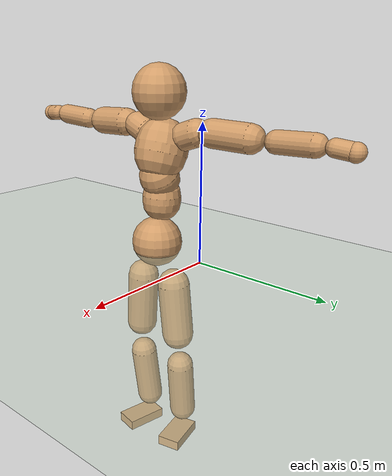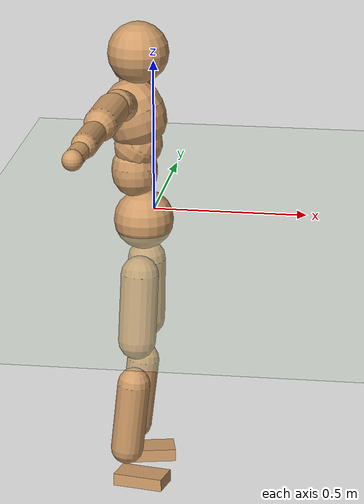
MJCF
<mujoco model="humanoid">
  <compiler coordinate="local"/>
  <default>
    <joint damping="0.0" armature="0.01" stiffness="0.0" limited="true"/>
    <geom conaffinity="1" condim="3" contype="7" margin="0.001" rgba="0.8 0.6 .4 1"/>
  </default>
  <asset>
    <texture type="skybox" builtin="gradient" rgb1=".4 .5 .6" rgb2="0 0 0" width="100" height="100"/>
    <texture builtin="flat" height="1278" mark="cross" markrgb="1 1 1" name="texgeom" random="0.01" rgb1="0.8 0.6 0.4" rgb2="0.8 0.6 0.4" type="cube" width="127"/>
    <texture builtin="checker" height="100" name="texplane" rgb1="0 0 0" rgb2="0.8 0.8 0.8" type="2d" width="100"/>
    <material name="MatPlane" reflectance="0.5" shininess="1" specular="1" texrepeat="60 60" texture="texplane"/>
    <material name="geom" texture="texgeom" texuniform="true"/>
  </asset>
  <worldbody>
    <light cutoff="100" diffuse="1 1 1" dir="-0 0 -1.3" directional="true" exponent="1" pos="0 0 1.3" specular=".1 .1 .1"/>
    <geom conaffinity="1" condim="3" name="floor" pos="0 0 0" rgba="0.8 0.9 0.8 1" size="100 100 .2" type="plane" material="MatPlane"/>
    <body name="Pelvis" pos="0.0003 -0.2109 0.0358">
      <freejoint name="Pelvis"/>
      <geom type="sphere" contype="1" conaffinity="1" density="500" size="0.0958" pos="0.0000 0.0000 0.0000" name="Pelvis"/>
      <body name="L_Hip" pos="-0.0027 0.0742 -0.0893">
        <joint name="L_Hip_x" type="hinge" pos="0 0 0" axis="1 0 0" stiffness="800" damping="80" armature="0.02" range="-180.0000 180.0000"/>
        <joint name="L_Hip_y" type="hinge" pos="0 0 0" axis="0 1 0" stiffness="800" damping="80" armature="0.02" range="-180.0000 180.0000"/>
        <joint name="L_Hip_z" type="hinge" pos="0 0 0" axis="0 0 1" stiffness="800" damping="80" armature="0.02" range="-180.0000 180.0000"/>
        <geom type="capsule" contype="1" conaffinity="1" density="500" fromto="-0.0022 0.0057 -0.0712 -0.0087 0.0227 -0.2848" size="0.0612" name="L_Hip"/>
        <body name="L_Knee" pos="-0.0109 0.0284 -0.3561">
          <joint name="L_Knee_x" type="hinge" pos="0 0 0" axis="1 0 0" stiffness="800" damping="80" armature="0.02" range="-180.0000 180.0000"/>
          <joint name="L_Knee_y" type="hinge" pos="0 0 0" axis="0 1 0" stiffness="800" damping="80" armature="0.02" range="-180.0000 180.0000"/>
          <joint name="L_Knee_z" type="hinge" pos="0 0 0" axis="0 0 1" stiffness="800" damping="80" armature="0.02" range="-180.0000 180.0000"/>
          <geom type="capsule" contype="1" conaffinity="1" density="500" fromto="-0.0088 -0.0023 -0.0756 -0.0350 -0.0090 -0.3024" size="0.0525" name="L_Knee"/>
          <body name="L_Ankle" pos="-0.0438 -0.0113 -0.378">
            <joint name="L_Ankle_x" type="hinge" pos="0 0 0" axis="1 0 0" stiffness="800" damping="80" armature="0.02" range="-180.0000 180.0000"/>
            <joint name="L_Ankle_y" type="hinge" pos="0 0 0" axis="0 1 0" stiffness="800" damping="80" armature="0.02" range="-180.0000 180.0000"/>
            <joint name="L_Ankle_z" type="hinge" pos="0 0 0" axis="0 0 1" stiffness="800" damping="80" armature="0.02" range="-180.0000 180.0000"/>
            <geom type="box" contype="1" conaffinity="1" density="500" pos="0.0563 0.0127 -0.0273" size="0.0801 0.0462 0.0201" quat="0.9939 0.0000 0.0000 0.1106" name="L_Ankle"/>
            <body name="L_Toe" pos="0.1125 0.0254 -0.0546">
              <joint name="L_Toe_x" type="hinge" pos="0 0 0" axis="1 0 0" stiffness="500" damping="50" armature="0.02" range="-180.0000 180.0000"/>
              <joint name="L_Toe_y" type="hinge" pos="0 0 0" axis="0 1 0" stiffness="500" damping="50" armature="0.02" range="-180.0000 180.0000"/>
              <joint name="L_Toe_z" type="hinge" pos="0 0 0" axis="0 0 1" stiffness="500" damping="50" armature="0.02" range="-180.0000 180.0000"/>
              <geom type="box" contype="1" conaffinity="1" density="500" pos="0.0000 0.0000 0.0269" size="0.001 0.0023 0.001" quat="0.9931 0.0000 0.0000 0.1170" name="L_Toe"/>
            </body>
          </body>
        </body>
      </body>
      <body name="R_Hip" pos="0.0005 -0.072 -0.0892">
        <joint name="R_Hip_x" type="hinge" pos="0 0 0" axis="1 0 0" stiffness="800" damping="80" armature="0.02" range="-180.0000 180.0000"/>
        <joint name="R_Hip_y" type="hinge" pos="0 0 0" axis="0 1 0" stiffness="800" damping="80" armature="0.02" range="-180.0000 180.0000"/>
        <joint name="R_Hip_z" type="hinge" pos="0 0 0" axis="0 0 1" stiffness="800" damping="80" armature="0.02" range="-180.0000 180.0000"/>
        <geom type="capsule" contype="1" conaffinity="1" density="500" fromto="-0.0024 -0.0069 -0.0725 -0.0097 -0.0276 -0.2901" size="0.0605" name="R_Hip"/>
        <body name="R_Knee" pos="-0.0121 -0.0344 -0.3626">
          <joint name="R_Knee_x" type="hinge" pos="0 0 0" axis="1 0 0" stiffness="800" damping="80" armature="0.02" range="-180.0000 180.0000"/>
          <joint name="R_Knee_y" type="hinge" pos="0 0 0" axis="0 1 0" stiffness="800" damping="80" armature="0.02" range="-180.0000 180.0000"/>
          <joint name="R_Knee_z" type="hinge" pos="0 0 0" axis="0 0 1" stiffness="800" damping="80" armature="0.02" range="-180.0000 180.0000"/>
          <geom type="capsule" contype="1" conaffinity="1" density="500" fromto="-0.0085 0.0027 -0.0761 -0.0339 0.0109 -0.3043" size="0.0528" name="R_Knee"/>
          <body name="R_Ankle" pos="-0.0424 0.0136 -0.3804">
            <joint name="R_Ankle_x" type="hinge" pos="0 0 0" axis="1 0 0" stiffness="800" damping="80" armature="0.02" range="-180.0000 180.0000"/>
            <joint name="R_Ankle_y" type="hinge" pos="0 0 0" axis="0 1 0" stiffness="800" damping="80" armature="0.02" range="-180.0000 180.0000"/>
            <joint name="R_Ankle_z" type="hinge" pos="0 0 0" axis="0 0 1" stiffness="800" damping="80" armature="0.02" range="-180.0000 180.0000"/>
            <geom type="box" contype="1" conaffinity="1" density="500" pos="0.0582 -0.0114 -0.0234" size="0.0818 0.0456 0.0201" quat="0.9953 0.0000 0.0000 -0.0966" name="R_Ankle"/>
            <body name="R_Toe" pos="0.1163 -0.0228 -0.0469">
              <joint name="R_Toe_x" type="hinge" pos="0 0 0" axis="1 0 0" stiffness="500" damping="50" armature="0.02" range="-180.0000 180.0000"/>
              <joint name="R_Toe_y" type="hinge" pos="0 0 0" axis="0 1 0" stiffness="500" damping="50" armature="0.02" range="-180.0000 180.0000"/>
              <joint name="R_Toe_z" type="hinge" pos="0 0 0" axis="0 0 1" stiffness="500" damping="50" armature="0.02" range="-180.0000 180.0000"/>
              <geom type="box" contype="1" conaffinity="1" density="500" pos="0.0000 0.0000 0.0245" size="0.0009 0.0023 0.0011" quat="0.9962 0.0000 0.0000 -0.0869" name="R_Toe"/>
            </body>
          </body>
        </body>
      </body>
      <body name="Torso" pos="-0.0268 -0.0015 0.1032">
        <joint name="Torso_x" type="hinge" pos="0 0 0" axis="1 0 0" stiffness="1000" damping="100" armature="0.02" range="-180.0000 180.0000"/>
        <joint name="Torso_y" type="hinge" pos="0 0 0" axis="0 1 0" stiffness="1000" damping="100" armature="0.02" range="-180.0000 180.0000"/>
        <joint name="Torso_z" type="hinge" pos="0 0 0" axis="0 0 1" stiffness="1000" damping="100" armature="0.02" range="-180.0000 180.0000"/>
        <geom type="capsule" contype="1" conaffinity="1" density="500" fromto="-0.0016 0.0015 0.0712 -0.0010 0.0010 0.0474" size="0.073" name="Torso"/>
        <body name="Spine" pos="-0.0026 0.0024 0.1186">
          <joint name="Spine_x" type="hinge" pos="0 0 0" axis="1 0 0" stiffness="1000" damping="100" armature="0.02" range="-180.0000 180.0000"/>
          <joint name="Spine_y" type="hinge" pos="0 0 0" axis="0 1 0" stiffness="1000" damping="100" armature="0.02" range="-180.0000 180.0000"/>
          <joint name="Spine_z" type="hinge" pos="0 0 0" axis="0 0 1" stiffness="1000" damping="100" armature="0.02" range="-180.0000 180.0000"/>
          <geom type="capsule" contype="1" conaffinity="1" density="500" fromto="0.0165 0.0009 0.0290 0.0110 0.0006 0.0194" size="0.0747" name="Spine"/>
          <body name="Chest" pos="0.0275 0.0014 0.0484">
            <joint name="Chest_x" type="hinge" pos="0 0 0" axis="1 0 0" stiffness="1000" damping="100" armature="0.02" range="-180.0000 180.0000"/>
            <joint name="Chest_y" type="hinge" pos="0 0 0" axis="0 1 0" stiffness="1000" damping="100" armature="0.02" range="-180.0000 180.0000"/>
            <joint name="Chest_z" type="hinge" pos="0 0 0" axis="0 0 1" stiffness="1000" damping="100" armature="0.02" range="-180.0000 180.0000"/>
            <geom type="capsule" contype="1" conaffinity="1" density="500" fromto="-0.0298 -0.0010 0.0923 -0.0199 -0.0006 0.0615" size="0.0981" name="Chest"/>
            <body name="Neck" pos="-0.0606 -0.0023 0.2172">
              <joint name="Neck_x" type="hinge" pos="0 0 0" axis="1 0 0" stiffness="500" damping="50" armature="0.02" range="-180.0000 180.0000"/>
              <joint name="Neck_y" type="hinge" pos="0 0 0" axis="0 1 0" stiffness="500" damping="50" armature="0.02" range="-180.0000 180.0000"/>
              <joint name="Neck_z" type="hinge" pos="0 0 0" axis="0 0 1" stiffness="500" damping="50" armature="0.02" range="-180.0000 180.0000"/>
              <geom type="capsule" contype="1" conaffinity="1" density="500" fromto="0.0096 0.0007 0.0121 0.0383 0.0028 0.0484" size="0.0411" name="Neck"/>
              <body name="Head" pos="0.0479 0.0035 0.0605">
                <joint name="Head_x" type="hinge" pos="0 0 0" axis="1 0 0" stiffness="500" damping="50" armature="0.02" range="-180.0000 180.0000"/>
                <joint name="Head_y" type="hinge" pos="0 0 0" axis="0 1 0" stiffness="500" damping="50" armature="0.02" range="-180.0000 180.0000"/>
                <joint name="Head_z" type="hinge" pos="0 0 0" axis="0 0 1" stiffness="500" damping="50" armature="0.02" range="-180.0000 180.0000"/>
                <geom type="sphere" contype="1" conaffinity="1" density="500" size="0.0976" pos="0.0000 0.0000 0.0000" name="Head"/>
              </body>
            </body>
            <body name="L_Thorax" pos="-0.0418 0.0749 0.1228">
              <joint name="L_Thorax_x" type="hinge" pos="0 0 0" axis="1 0 0" stiffness="500" damping="50" armature="0.02" range="-180.0000 180.0000"/>
              <joint name="L_Thorax_y" type="hinge" pos="0 0 0" axis="0 1 0" stiffness="500" damping="50" armature="0.02" range="-180.0000 180.0000"/>
              <joint name="L_Thorax_z" type="hinge" pos="0 0 0" axis="0 0 1" stiffness="500" damping="50" armature="0.02" range="-180.0000 180.0000"/>
              <geom type="capsule" contype="1" conaffinity="1" density="500" fromto="-0.0014 0.0168 0.0059 -0.0057 0.0671 0.0235" size="0.0502" name="L_Thorax"/>
              <body name="L_Shoulder" pos="-0.0071 0.0839 0.0294">
                <joint name="L_Shoulder_x" type="hinge" pos="0 0 0" axis="1 0 0" stiffness="500" damping="50" armature="0.02" range="-720.0000 720.0000"/>
                <joint name="L_Shoulder_y" type="hinge" pos="0 0 0" axis="0 1 0" stiffness="500" damping="50" armature="0.02" range="-720.0000 720.0000"/>
                <joint name="L_Shoulder_z" type="hinge" pos="0 0 0" axis="0 0 1" stiffness="500" damping="50" armature="0.02" range="-720.0000 720.0000"/>
                <geom type="capsule" contype="1" conaffinity="1" density="500" fromto="-0.0049 0.0487 -0.0015 -0.0195 0.1948 -0.0060" size="0.0508" name="L_Shoulder"/>
                <body name="L_Elbow" pos="-0.0244 0.2435 -0.0075">
                  <joint name="L_Elbow_x" type="hinge" pos="0 0 0" axis="1 0 0" stiffness="500" damping="50" armature="0.02" range="-720.0000 720.0000"/>
                  <joint name="L_Elbow_y" type="hinge" pos="0 0 0" axis="0 1 0" stiffness="500" damping="50" armature="0.02" range="-720.0000 720.0000"/>
                  <joint name="L_Elbow_z" type="hinge" pos="0 0 0" axis="0 0 1" stiffness="500" damping="50" armature="0.02" range="-720.0000 720.0000"/>
                  <geom type="capsule" contype="1" conaffinity="1" density="500" fromto="0.0000 0.0458 0.0017 0.0001 0.1832 0.0066" size="0.039" name="L_Elbow"/>
                  <body name="L_Wrist" pos="0.0001 0.229 0.0083">
                    <joint name="L_Wrist_x" type="hinge" pos="0 0 0" axis="1 0 0" stiffness="300" damping="30" armature="0.02" range="-180.0000 180.0000"/>
                    <joint name="L_Wrist_y" type="hinge" pos="0 0 0" axis="0 1 0" stiffness="300" damping="30" armature="0.02" range="-180.0000 180.0000"/>
                    <joint name="L_Wrist_z" type="hinge" pos="0 0 0" axis="0 0 1" stiffness="300" damping="30" armature="0.02" range="-180.0000 180.0000"/>
                    <geom type="capsule" contype="1" conaffinity="1" density="500" fromto="-0.0025 0.0155 -0.0019 -0.0102 0.0620 -0.0074" size="0.0295" name="L_Wrist"/>
                    <body name="L_Hand" pos="-0.0127 0.0775 -0.0093">
                      <joint name="L_Hand_x" type="hinge" pos="0 0 0" axis="1 0 0" stiffness="300" damping="30" armature="0.02" range="-180.0000 180.0000"/>
                      <joint name="L_Hand_y" type="hinge" pos="0 0 0" axis="0 1 0" stiffness="300" damping="30" armature="0.02" range="-180.0000 180.0000"/>
                      <joint name="L_Hand_z" type="hinge" pos="0 0 0" axis="0 0 1" stiffness="300" damping="30" armature="0.02" range="-180.0000 180.0000"/>
                      <geom type="sphere" contype="1" conaffinity="1" density="500" size="0.0313" pos="0.0000 0.0000 0.0000" name="L_Hand"/>
                    </body>
                  </body>
                </body>
              </body>
            </body>
            <body name="R_Thorax" pos="-0.0465 -0.0774 0.1215">
              <joint name="R_Thorax_x" type="hinge" pos="0 0 0" axis="1 0 0" stiffness="500" damping="50" armature="0.02" range="-180.0000 180.0000"/>
              <joint name="R_Thorax_y" type="hinge" pos="0 0 0" axis="0 1 0" stiffness="500" damping="50" armature="0.02" range="-180.0000 180.0000"/>
              <joint name="R_Thorax_z" type="hinge" pos="0 0 0" axis="0 0 1" stiffness="500" damping="50" armature="0.02" range="-180.0000 180.0000"/>
              <geom type="capsule" contype="1" conaffinity="1" density="500" fromto="-0.0018 -0.0173 0.0064 -0.0073 -0.0693 0.0256" size="0.0493" name="R_Thorax"/>
              <body name="R_Shoulder" pos="-0.0091 -0.0866 0.032">
                <joint name="R_Shoulder_x" type="hinge" pos="0 0 0" axis="1 0 0" stiffness="500" damping="50" armature="0.02" range="-720.0000 720.0000"/>
                <joint name="R_Shoulder_y" type="hinge" pos="0 0 0" axis="0 1 0" stiffness="500" damping="50" armature="0.02" range="-720.0000 720.0000"/>
                <joint name="R_Shoulder_z" type="hinge" pos="0 0 0" axis="0 0 1" stiffness="500" damping="50" armature="0.02" range="-720.0000 720.0000"/>
                <geom type="capsule" contype="1" conaffinity="1" density="500" fromto="-0.0039 -0.0479 -0.0024 -0.0155 -0.1916 -0.0096" size="0.0523" name="R_Shoulder"/>
                <body name="R_Elbow" pos="-0.0193 -0.2395 -0.0119">
                  <joint name="R_Elbow_x" type="hinge" pos="0 0 0" axis="1 0 0" stiffness="500" damping="50" armature="0.02" range="-720.0000 720.0000"/>
                  <joint name="R_Elbow_y" type="hinge" pos="0 0 0" axis="0 1 0" stiffness="500" damping="50" armature="0.02" range="-720.0000 720.0000"/>
                  <joint name="R_Elbow_z" type="hinge" pos="0 0 0" axis="0 0 1" stiffness="500" damping="50" armature="0.02" range="-720.0000 720.0000"/>
                  <geom type="capsule" contype="1" conaffinity="1" density="500" fromto="-0.0007 -0.0475 0.0019 -0.0027 -0.1900 0.0076" size="0.0392" name="R_Elbow"/>
                  <body name="R_Wrist" pos="-0.0034 -0.2375 0.0095">
                    <joint name="R_Wrist_x" type="hinge" pos="0 0 0" axis="1 0 0" stiffness="300" damping="30" armature="0.02" range="-180.0000 180.0000"/>
                    <joint name="R_Wrist_y" type="hinge" pos="0 0 0" axis="0 1 0" stiffness="300" damping="30" armature="0.02" range="-180.0000 180.0000"/>
                    <joint name="R_Wrist_z" type="hinge" pos="0 0 0" axis="0 0 1" stiffness="300" damping="30" armature="0.02" range="-180.0000 180.0000"/>
                    <geom type="capsule" contype="1" conaffinity="1" density="500" fromto="-0.0020 -0.0158 -0.0014 -0.0082 -0.0630 -0.0057" size="0.0305" name="R_Wrist"/>
                    <body name="R_Hand" pos="-0.0102 -0.0788 -0.0071">
                      <joint name="R_Hand_x" type="hinge" pos="0 0 0" axis="1 0 0" stiffness="300" damping="30" armature="0.02" range="-180.0000 180.0000"/>
                      <joint name="R_Hand_y" type="hinge" pos="0 0 0" axis="0 1 0" stiffness="300" damping="30" armature="0.02" range="-180.0000 180.0000"/>
                      <joint name="R_Hand_z" type="hinge" pos="0 0 0" axis="0 0 1" stiffness="300" damping="30" armature="0.02" range="-180.0000 180.0000"/>
                      <geom type="sphere" contype="1" conaffinity="1" density="500" size="0.0318" pos="0.0000 0.0000 0.0000" name="R_Hand"/>
                    </body>
                  </body>
                </body>
              </body>
            </body>
          </body>
        </body>
      </body>
    </body>
  </worldbody>
  <actuator>
    <motor name="L_Hip_x" joint="L_Hip_x" gear="500"/>
    <motor name="L_Hip_y" joint="L_Hip_y" gear="500"/>
    <motor name="L_Hip_z" joint="L_Hip_z" gear="500"/>
    <motor name="L_Knee_x" joint="L_Knee_x" gear="500"/>
    <motor name="L_Knee_y" joint="L_Knee_y" gear="500"/>
    <motor name="L_Knee_z" joint="L_Knee_z" gear="500"/>
    <motor name="L_Ankle_x" joint="L_Ankle_x" gear="500"/>
    <motor name="L_Ankle_y" joint="L_Ankle_y" gear="500"/>
    <motor name="L_Ankle_z" joint="L_Ankle_z" gear="500"/>
    <motor name="L_Toe_x" joint="L_Toe_x" gear="500"/>
    <motor name="L_Toe_y" joint="L_Toe_y" gear="500"/>
    <motor name="L_Toe_z" joint="L_Toe_z" gear="500"/>
    <motor name="R_Hip_x" joint="R_Hip_x" gear="500"/>
    <motor name="R_Hip_y" joint="R_Hip_y" gear="500"/>
    <motor name="R_Hip_z" joint="R_Hip_z" gear="500"/>
    <motor name="R_Knee_x" joint="R_Knee_x" gear="500"/>
    <motor name="R_Knee_y" joint="R_Knee_y" gear="500"/>
    <motor name="R_Knee_z" joint="R_Knee_z" gear="500"/>
    <motor name="R_Ankle_x" joint="R_Ankle_x" gear="500"/>
    <motor name="R_Ankle_y" joint="R_Ankle_y" gear="500"/>
    <motor name="R_Ankle_z" joint="R_Ankle_z" gear="500"/>
    <motor name="R_Toe_x" joint="R_Toe_x" gear="500"/>
    <motor name="R_Toe_y" joint="R_Toe_y" gear="500"/>
    <motor name="R_Toe_z" joint="R_Toe_z" gear="500"/>
    <motor name="Torso_x" joint="Torso_x" gear="500"/>
    <motor name="Torso_y" joint="Torso_y" gear="500"/>
    <motor name="Torso_z" joint="Torso_z" gear="500"/>
    <motor name="Spine_x" joint="Spine_x" gear="500"/>
    <motor name="Spine_y" joint="Spine_y" gear="500"/>
    <motor name="Spine_z" joint="Spine_z" gear="500"/>
    <motor name="Chest_x" joint="Chest_x" gear="500"/>
    <motor name="Chest_y" joint="Chest_y" gear="500"/>
    <motor name="Chest_z" joint="Chest_z" gear="500"/>
    <motor name="Neck_x" joint="Neck_x" gear="500"/>
    <motor name="Neck_y" joint="Neck_y" gear="500"/>
    <motor name="Neck_z" joint="Neck_z" gear="500"/>
    <motor name="Head_x" joint="Head_x" gear="500"/>
    <motor name="Head_y" joint="Head_y" gear="500"/>
    <motor name="Head_z" joint="Head_z" gear="500"/>
    <motor name="L_Thorax_x" joint="L_Thorax_x" gear="500"/>
    <motor name="L_Thorax_y" joint="L_Thorax_y" gear="500"/>
    <motor name="L_Thorax_z" joint="L_Thorax_z" gear="500"/>
    <motor name="L_Shoulder_x" joint="L_Shoulder_x" gear="500"/>
    <motor name="L_Shoulder_y" joint="L_Shoulder_y" gear="500"/>
    <motor name="L_Shoulder_z" joint="L_Shoulder_z" gear="500"/>
    <motor name="L_Elbow_x" joint="L_Elbow_x" gear="500"/>
    <motor name="L_Elbow_y" joint="L_Elbow_y" gear="500"/>
    <motor name="L_Elbow_z" joint="L_Elbow_z" gear="500"/>
    <motor name="L_Wrist_x" joint="L_Wrist_x" gear="500"/>
    <motor name="L_Wrist_y" joint="L_Wrist_y" gear="500"/>
    <motor name="L_Wrist_z" joint="L_Wrist_z" gear="500"/>
    <motor name="L_Hand_x" joint="L_Hand_x" gear="500"/>
    <motor name="L_Hand_y" joint="L_Hand_y" gear="500"/>
    <motor name="L_Hand_z" joint="L_Hand_z" gear="500"/>
    <motor name="R_Thorax_x" joint="R_Thorax_x" gear="500"/>
    <motor name="R_Thorax_y" joint="R_Thorax_y" gear="500"/>
    <motor name="R_Thorax_z" joint="R_Thorax_z" gear="500"/>
    <motor name="R_Shoulder_x" joint="R_Shoulder_x" gear="500"/>
    <motor name="R_Shoulder_y" joint="R_Shoulder_y" gear="500"/>
    <motor name="R_Shoulder_z" joint="R_Shoulder_z" gear="500"/>
    <motor name="R_Elbow_x" joint="R_Elbow_x" gear="500"/>
    <motor name="R_Elbow_y" joint="R_Elbow_y" gear="500"/>
    <motor name="R_Elbow_z" joint="R_Elbow_z" gear="500"/>
    <motor name="R_Wrist_x" joint="R_Wrist_x" gear="500"/>
    <motor name="R_Wrist_y" joint="R_Wrist_y" gear="500"/>
    <motor name="R_Wrist_z" joint="R_Wrist_z" gear="500"/>
    <motor name="R_Hand_x" joint="R_Hand_x" gear="500"/>
    <motor name="R_Hand_y" joint="R_Hand_y" gear="500"/>
    <motor name="R_Hand_z" joint="R_Hand_z" gear="500"/>
  </actuator>
  <contact>
    <exclude body1="Torso" body2="Chest"/>
    <exclude body1="Head" body2="Chest"/>
    <exclude body1="R_Knee" body2="R_Toe"/>
    <exclude body1="R_Knee" body2="L_Ankle"/>
    <exclude body1="R_Knee" body2="L_Toe"/>
    <exclude body1="L_Knee" body2="L_Toe"/>
    <exclude body1="L_Knee" body2="R_Ankle"/>
    <exclude body1="L_Knee" body2="R_Toe"/>
    <exclude body1="L_Shoulder" body2="Chest"/>
    <exclude body1="R_Shoulder" body2="Chest"/>
  </contact>
  <sensor/>
  <size njmax="700" nconmax="700"/>
</mujoco>
